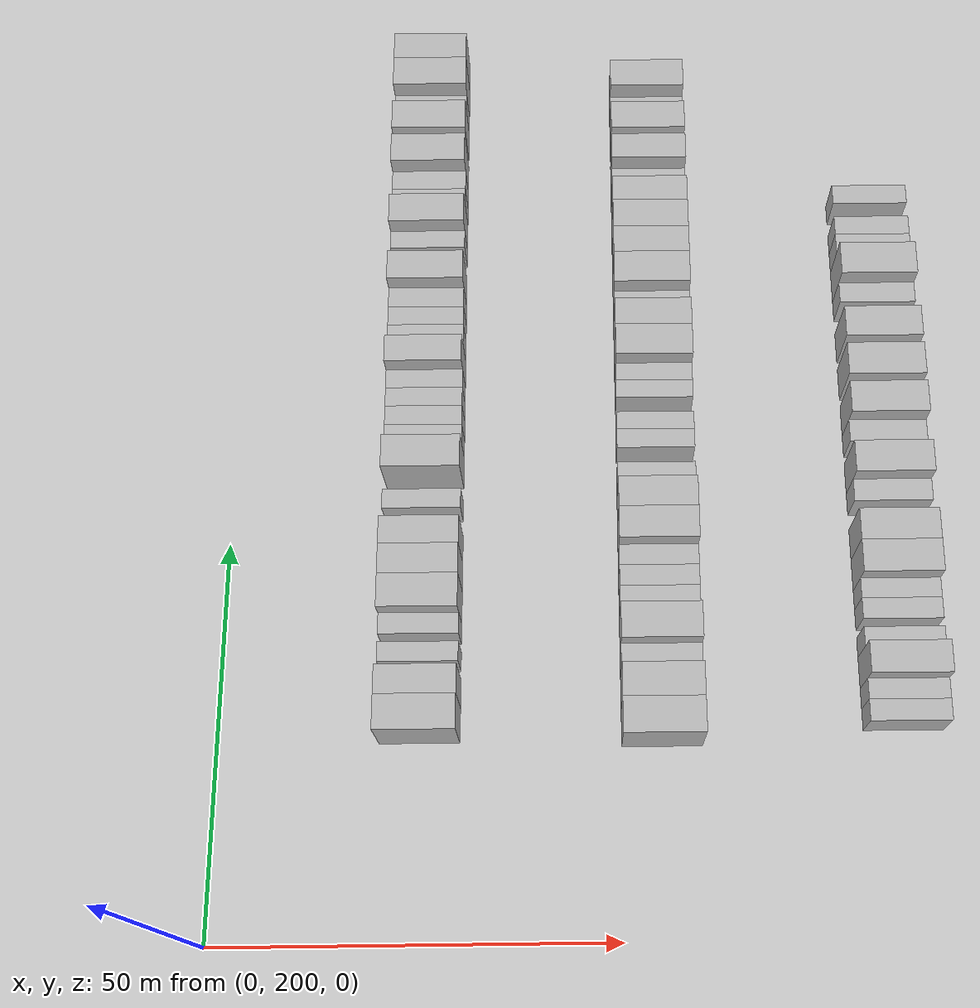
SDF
<sdf version="1.6">
 <world name="default">
  <model name="building_170">
   <static>1</static>
   <pose>25.0000 226.2378 0 0.000000 0.000000 0.000000</pose>
   <link name="link">
    <pose>0 0 4.50 0 0 0</pose>
    <collision name="collision"><geometry><box><size>10.0000 4.3384 9.0000</size></box></geometry></collision>
    <visual name="visual">
     <cast_shadows>0</cast_shadows>
     <geometry><box><size>10.0000 4.3384 9.0000</size></box></geometry>
     <material>
      <script>
       <uri>model://HANNAS_wall/materials/scripts</uri>
       <uri>model://HANNAS_wall/materials/textures</uri>
       <name>vrc/HANNAS_wall</name>
      </script>
     </material>
    </visual>
   </link>
  </model>
  <model name="building_171">
   <static>1</static>
   <pose>25.0000 230.2174 0 0.000000 0.000000 0.000000</pose>
   <link name="link">
    <pose>0 0 4.50 0 0 0</pose>
    <collision name="collision"><geometry><box><size>10.0000 3.6210 9.0000</size></box></geometry></collision>
    <visual name="visual">
     <cast_shadows>0</cast_shadows>
     <geometry><box><size>10.0000 3.6210 9.0000</size></box></geometry>
     <material>
      <script>
       <uri>model://HANNAS_wall/materials/scripts</uri>
       <uri>model://HANNAS_wall/materials/textures</uri>
       <name>vrc/HANNAS_wall</name>
      </script>
     </material>
    </visual>
   </link>
  </model>
  <model name="building_172">
   <static>1</static>
   <pose>25.0000 234.2759 0 0.000000 0.000000 0.000000</pose>
   <link name="link">
    <pose>0 0 3.00 0 0 0</pose>
    <collision name="collision"><geometry><box><size>10.0000 2.4959 6.0000</size></box></geometry></collision>
    <visual name="visual">
     <cast_shadows>0</cast_shadows>
     <geometry><box><size>10.0000 2.4959 6.0000</size></box></geometry>
     <material>
      <script>
       <uri>model://HANNAS_wall/materials/scripts</uri>
       <uri>model://HANNAS_wall/materials/textures</uri>
       <name>vrc/HANNAS_wall</name>
      </script>
     </material>
    </visual>
   </link>
  </model>
  <model name="building_173">
   <static>1</static>
   <pose>25.0000 237.8498 0 0.000000 0.000000 0.000000</pose>
   <link name="link">
    <pose>0 0 3.00 0 0 0</pose>
    <collision name="collision"><geometry><box><size>10.0000 2.6520 6.0000</size></box></geometry></collision>
    <visual name="visual">
     <cast_shadows>0</cast_shadows>
     <geometry><box><size>10.0000 2.6520 6.0000</size></box></geometry>
     <material>
      <script>
       <uri>model://HANNAS_wall/materials/scripts</uri>
       <uri>model://HANNAS_wall/materials/textures</uri>
       <name>vrc/HANNAS_wall</name>
      </script>
     </material>
    </visual>
   </link>
  </model>
  <model name="building_174">
   <static>1</static>
   <pose>25.0000 241.3056 0 0.000000 0.000000 0.000000</pose>
   <link name="link">
    <pose>0 0 4.50 0 0 0</pose>
    <collision name="collision"><geometry><box><size>10.0000 4.2597 9.0000</size></box></geometry></collision>
    <visual name="visual">
     <cast_shadows>0</cast_shadows>
     <geometry><box><size>10.0000 4.2597 9.0000</size></box></geometry>
     <material>
      <script>
       <uri>model://HANNAS_wall/materials/scripts</uri>
       <uri>model://HANNAS_wall/materials/textures</uri>
       <name>vrc/HANNAS_wall</name>
      </script>
     </material>
    </visual>
   </link>
  </model>
  <model name="building_175">
   <static>1</static>
   <pose>25.0000 245.3558 0 0.000000 0.000000 0.000000</pose>
   <link name="link">
    <pose>0 0 4.50 0 0 0</pose>
    <collision name="collision"><geometry><box><size>10.0000 3.8407 9.0000</size></box></geometry></collision>
    <visual name="visual">
     <cast_shadows>0</cast_shadows>
     <geometry><box><size>10.0000 3.8407 9.0000</size></box></geometry>
     <material>
      <script>
       <uri>model://HANNAS_wall/materials/scripts</uri>
       <uri>model://HANNAS_wall/materials/textures</uri>
       <name>vrc/HANNAS_wall</name>
      </script>
     </material>
    </visual>
   </link>
  </model>
  <model name="building_176">
   <static>1</static>
   <pose>25.0000 249.0793 0 0.000000 0.000000 0.000000</pose>
   <link name="link">
    <pose>0 0 4.50 0 0 0</pose>
    <collision name="collision"><geometry><box><size>10.0000 3.6061 9.0000</size></box></geometry></collision>
    <visual name="visual">
     <cast_shadows>0</cast_shadows>
     <geometry><box><size>10.0000 3.6061 9.0000</size></box></geometry>
     <material>
      <script>
       <uri>model://HANNAS_wall/materials/scripts</uri>
       <uri>model://HANNAS_wall/materials/textures</uri>
       <name>vrc/HANNAS_wall</name>
      </script>
     </material>
    </visual>
   </link>
  </model>
  <model name="building_177">
   <static>1</static>
   <pose>25.0000 254.1568 0 0.000000 0.000000 0.000000</pose>
   <link name="link">
    <pose>0 0 3.00 0 0 0</pose>
    <collision name="collision"><geometry><box><size>10.0000 2.5488 6.0000</size></box></geometry></collision>
    <visual name="visual">
     <cast_shadows>0</cast_shadows>
     <geometry><box><size>10.0000 2.5488 6.0000</size></box></geometry>
     <material>
      <script>
       <uri>model://HANNAS_wall/materials/scripts</uri>
       <uri>model://HANNAS_wall/materials/textures</uri>
       <name>vrc/HANNAS_wall</name>
      </script>
     </material>
    </visual>
   </link>
  </model>
  <model name="building_178">
   <static>1</static>
   <pose>25.0000 259.5538 0 0.000000 0.000000 0.000000</pose>
   <link name="link">
    <pose>0 0 4.50 0 0 0</pose>
    <collision name="collision"><geometry><box><size>10.0000 4.2453 9.0000</size></box></geometry></collision>
    <visual name="visual">
     <cast_shadows>0</cast_shadows>
     <geometry><box><size>10.0000 4.2453 9.0000</size></box></geometry>
     <material>
      <script>
       <uri>model://HANNAS_wall/materials/scripts</uri>
       <uri>model://HANNAS_wall/materials/textures</uri>
       <name>vrc/HANNAS_wall</name>
      </script>
     </material>
    </visual>
   </link>
  </model>
  <model name="building_179">
   <static>1</static>
   <pose>25.0000 262.9451 0 0.000000 0.000000 0.000000</pose>
   <link name="link">
    <pose>0 0 3.00 0 0 0</pose>
    <collision name="collision"><geometry><box><size>10.0000 2.5372 6.0000</size></box></geometry></collision>
    <visual name="visual">
     <cast_shadows>0</cast_shadows>
     <geometry><box><size>10.0000 2.5372 6.0000</size></box></geometry>
     <material>
      <script>
       <uri>model://HANNAS_wall/materials/scripts</uri>
       <uri>model://HANNAS_wall/materials/textures</uri>
       <name>vrc/HANNAS_wall</name>
      </script>
     </material>
    </visual>
   </link>
  </model>
  <model name="building_180">
   <static>1</static>
   <pose>25.0000 265.5349 0 0.000000 0.000000 0.000000</pose>
   <link name="link">
    <pose>0 0 3.00 0 0 0</pose>
    <collision name="collision"><geometry><box><size>10.0000 2.6426 6.0000</size></box></geometry></collision>
    <visual name="visual">
     <cast_shadows>0</cast_shadows>
     <geometry><box><size>10.0000 2.6426 6.0000</size></box></geometry>
     <material>
      <script>
       <uri>model://HANNAS_wall/materials/scripts</uri>
       <uri>model://HANNAS_wall/materials/textures</uri>
       <name>vrc/HANNAS_wall</name>
      </script>
     </material>
    </visual>
   </link>
  </model>
  <model name="building_181">
   <static>1</static>
   <pose>25.0000 268.1345 0 0.000000 0.000000 0.000000</pose>
   <link name="link">
    <pose>0 0 3.00 0 0 0</pose>
    <collision name="collision"><geometry><box><size>10.0000 2.5565 6.0000</size></box></geometry></collision>
    <visual name="visual">
     <cast_shadows>0</cast_shadows>
     <geometry><box><size>10.0000 2.5565 6.0000</size></box></geometry>
     <material>
      <script>
       <uri>model://HANNAS_wall/materials/scripts</uri>
       <uri>model://HANNAS_wall/materials/textures</uri>
       <name>vrc/HANNAS_wall</name>
      </script>
     </material>
    </visual>
   </link>
  </model>
  <model name="building_182">
   <static>1</static>
   <pose>25.0000 270.6859 0 0.000000 0.000000 0.000000</pose>
   <link name="link">
    <pose>0 0 3.00 0 0 0</pose>
    <collision name="collision"><geometry><box><size>10.0000 2.5463 6.0000</size></box></geometry></collision>
    <visual name="visual">
     <cast_shadows>0</cast_shadows>
     <geometry><box><size>10.0000 2.5463 6.0000</size></box></geometry>
     <material>
      <script>
       <uri>model://HANNAS_wall/materials/scripts</uri>
       <uri>model://HANNAS_wall/materials/textures</uri>
       <name>vrc/HANNAS_wall</name>
      </script>
     </material>
    </visual>
   </link>
  </model>
  <model name="building_183">
   <static>1</static>
   <pose>25.0000 273.7781 0 0.000000 0.000000 0.000000</pose>
   <link name="link">
    <pose>0 0 4.50 0 0 0</pose>
    <collision name="collision"><geometry><box><size>10.0000 3.6382 9.0000</size></box></geometry></collision>
    <visual name="visual">
     <cast_shadows>0</cast_shadows>
     <geometry><box><size>10.0000 3.6382 9.0000</size></box></geometry>
     <material>
      <script>
       <uri>model://HANNAS_wall/materials/scripts</uri>
       <uri>model://HANNAS_wall/materials/textures</uri>
       <name>vrc/HANNAS_wall</name>
      </script>
     </material>
    </visual>
   </link>
  </model>
  <model name="building_184">
   <static>1</static>
   <pose>25.0000 277.0227 0 0.000000 0.000000 0.000000</pose>
   <link name="link">
    <pose>0 0 3.00 0 0 0</pose>
    <collision name="collision"><geometry><box><size>10.0000 2.8510 6.0000</size></box></geometry></collision>
    <visual name="visual">
     <cast_shadows>0</cast_shadows>
     <geometry><box><size>10.0000 2.8510 6.0000</size></box></geometry>
     <material>
      <script>
       <uri>model://HANNAS_wall/materials/scripts</uri>
       <uri>model://HANNAS_wall/materials/textures</uri>
       <name>vrc/HANNAS_wall</name>
      </script>
     </material>
    </visual>
   </link>
  </model>
  <model name="building_185">
   <static>1</static>
   <pose>25.0000 279.7375 0 0.000000 0.000000 0.000000</pose>
   <link name="link">
    <pose>0 0 3.00 0 0 0</pose>
    <collision name="collision"><geometry><box><size>10.0000 2.5786 6.0000</size></box></geometry></collision>
    <visual name="visual">
     <cast_shadows>0</cast_shadows>
     <geometry><box><size>10.0000 2.5786 6.0000</size></box></geometry>
     <material>
      <script>
       <uri>model://HANNAS_wall/materials/scripts</uri>
       <uri>model://HANNAS_wall/materials/textures</uri>
       <name>vrc/HANNAS_wall</name>
      </script>
     </material>
    </visual>
   </link>
  </model>
  <model name="building_186">
   <static>1</static>
   <pose>25.0000 282.4233 0 0.000000 0.000000 0.000000</pose>
   <link name="link">
    <pose>0 0 3.00 0 0 0</pose>
    <collision name="collision"><geometry><box><size>10.0000 2.7930 6.0000</size></box></geometry></collision>
    <visual name="visual">
     <cast_shadows>0</cast_shadows>
     <geometry><box><size>10.0000 2.7930 6.0000</size></box></geometry>
     <material>
      <script>
       <uri>model://HANNAS_wall/materials/scripts</uri>
       <uri>model://HANNAS_wall/materials/textures</uri>
       <name>vrc/HANNAS_wall</name>
      </script>
     </material>
    </visual>
   </link>
  </model>
  <model name="building_187">
   <static>1</static>
   <pose>25.0000 285.8299 0 0.000000 0.000000 0.000000</pose>
   <link name="link">
    <pose>0 0 4.50 0 0 0</pose>
    <collision name="collision"><geometry><box><size>10.0000 4.0203 9.0000</size></box></geometry></collision>
    <visual name="visual">
     <cast_shadows>0</cast_shadows>
     <geometry><box><size>10.0000 4.0203 9.0000</size></box></geometry>
     <material>
      <script>
       <uri>model://HANNAS_wall/materials/scripts</uri>
       <uri>model://HANNAS_wall/materials/textures</uri>
       <name>vrc/HANNAS_wall</name>
      </script>
     </material>
    </visual>
   </link>
  </model>
  <model name="building_188">
   <static>1</static>
   <pose>25.0000 291.0971 0 0.000000 0.000000 0.000000</pose>
   <link name="link">
    <pose>0 0 3.00 0 0 0</pose>
    <collision name="collision"><geometry><box><size>10.0000 2.5140 6.0000</size></box></geometry></collision>
    <visual name="visual">
     <cast_shadows>0</cast_shadows>
     <geometry><box><size>10.0000 2.5140 6.0000</size></box></geometry>
     <material>
      <script>
       <uri>model://HANNAS_wall/materials/scripts</uri>
       <uri>model://HANNAS_wall/materials/textures</uri>
       <name>vrc/HANNAS_wall</name>
      </script>
     </material>
    </visual>
   </link>
  </model>
  <model name="building_189">
   <static>1</static>
   <pose>25.0000 294.3778 0 0.000000 0.000000 0.000000</pose>
   <link name="link">
    <pose>0 0 4.50 0 0 0</pose>
    <collision name="collision"><geometry><box><size>10.0000 4.0475 9.0000</size></box></geometry></collision>
    <visual name="visual">
     <cast_shadows>0</cast_shadows>
     <geometry><box><size>10.0000 4.0475 9.0000</size></box></geometry>
     <material>
      <script>
       <uri>model://HANNAS_wall/materials/scripts</uri>
       <uri>model://HANNAS_wall/materials/textures</uri>
       <name>vrc/HANNAS_wall</name>
      </script>
     </material>
    </visual>
   </link>
  </model>
  <model name="building_190">
   <static>1</static>
   <pose>25.0000 297.6092 0 0.000000 0.000000 0.000000</pose>
   <link name="link">
    <pose>0 0 3.00 0 0 0</pose>
    <collision name="collision"><geometry><box><size>10.0000 2.4152 6.0000</size></box></geometry></collision>
    <visual name="visual">
     <cast_shadows>0</cast_shadows>
     <geometry><box><size>10.0000 2.4152 6.0000</size></box></geometry>
     <material>
      <script>
       <uri>model://HANNAS_wall/materials/scripts</uri>
       <uri>model://HANNAS_wall/materials/textures</uri>
       <name>vrc/HANNAS_wall</name>
      </script>
     </material>
    </visual>
   </link>
  </model>
  <model name="building_191">
   <static>1</static>
   <pose>25.0000 300.2020 0 0.000000 0.000000 0.000000</pose>
   <link name="link">
    <pose>0 0 3.00 0 0 0</pose>
    <collision name="collision"><geometry><box><size>10.0000 2.7702 6.0000</size></box></geometry></collision>
    <visual name="visual">
     <cast_shadows>0</cast_shadows>
     <geometry><box><size>10.0000 2.7702 6.0000</size></box></geometry>
     <material>
      <script>
       <uri>model://HANNAS_wall/materials/scripts</uri>
       <uri>model://HANNAS_wall/materials/textures</uri>
       <name>vrc/HANNAS_wall</name>
      </script>
     </material>
    </visual>
   </link>
  </model>
  <model name="building_192">
   <static>1</static>
   <pose>25.0000 303.6496 0 0.000000 0.000000 0.000000</pose>
   <link name="link">
    <pose>0 0 4.50 0 0 0</pose>
    <collision name="collision"><geometry><box><size>10.0000 4.1251 9.0000</size></box></geometry></collision>
    <visual name="visual">
     <cast_shadows>0</cast_shadows>
     <geometry><box><size>10.0000 4.1251 9.0000</size></box></geometry>
     <material>
      <script>
       <uri>model://HANNAS_wall/materials/scripts</uri>
       <uri>model://HANNAS_wall/materials/textures</uri>
       <name>vrc/HANNAS_wall</name>
      </script>
     </material>
    </visual>
   </link>
  </model>
  <model name="building_193">
   <static>1</static>
   <pose>25.0000 308.8388 0 0.000000 0.000000 0.000000</pose>
   <link name="link">
    <pose>0 0 4.50 0 0 0</pose>
    <collision name="collision"><geometry><box><size>10.0000 4.2533 9.0000</size></box></geometry></collision>
    <visual name="visual">
     <cast_shadows>0</cast_shadows>
     <geometry><box><size>10.0000 4.2533 9.0000</size></box></geometry>
     <material>
      <script>
       <uri>model://HANNAS_wall/materials/scripts</uri>
       <uri>model://HANNAS_wall/materials/textures</uri>
       <name>vrc/HANNAS_wall</name>
      </script>
     </material>
    </visual>
   </link>
  </model>
  <model name="building_194">
   <static>1</static>
   <pose>25.0000 312.3116 0 0.000000 0.000000 0.000000</pose>
   <link name="link">
    <pose>0 0 3.00 0 0 0</pose>
    <collision name="collision"><geometry><box><size>10.0000 2.6922 6.0000</size></box></geometry></collision>
    <visual name="visual">
     <cast_shadows>0</cast_shadows>
     <geometry><box><size>10.0000 2.6922 6.0000</size></box></geometry>
     <material>
      <script>
       <uri>model://HANNAS_wall/materials/scripts</uri>
       <uri>model://HANNAS_wall/materials/textures</uri>
       <name>vrc/HANNAS_wall</name>
      </script>
     </material>
    </visual>
   </link>
  </model>
  <model name="building_195">
   <static>1</static>
   <pose>25.0000 315.7909 0 0.000000 0.000000 0.000000</pose>
   <link name="link">
    <pose>0 0 4.50 0 0 0</pose>
    <collision name="collision"><geometry><box><size>10.0000 4.2664 9.0000</size></box></geometry></collision>
    <visual name="visual">
     <cast_shadows>0</cast_shadows>
     <geometry><box><size>10.0000 4.2664 9.0000</size></box></geometry>
     <material>
      <script>
       <uri>model://HANNAS_wall/materials/scripts</uri>
       <uri>model://HANNAS_wall/materials/textures</uri>
       <name>vrc/HANNAS_wall</name>
      </script>
     </material>
    </visual>
   </link>
  </model>
  <model name="building_196">
   <static>1</static>
   <pose>25.0000 319.8835 0 0.000000 0.000000 0.000000</pose>
   <link name="link">
    <pose>0 0 4.50 0 0 0</pose>
    <collision name="collision"><geometry><box><size>10.0000 3.9189 9.0000</size></box></geometry></collision>
    <visual name="visual">
     <cast_shadows>0</cast_shadows>
     <geometry><box><size>10.0000 3.9189 9.0000</size></box></geometry>
     <material>
      <script>
       <uri>model://HANNAS_wall/materials/scripts</uri>
       <uri>model://HANNAS_wall/materials/textures</uri>
       <name>vrc/HANNAS_wall</name>
      </script>
     </material>
    </visual>
   </link>
  </model>
  <model name="building_397">
   <static>1</static>
   <pose>55.0000 225.6170 0 0.000000 0.000000 0.000000</pose>
   <link name="link">
    <pose>0 0 4.50 0 0 0</pose>
    <collision name="collision"><geometry><box><size>10.0000 4.4156 9.0000</size></box></geometry></collision>
    <visual name="visual">
     <cast_shadows>0</cast_shadows>
     <geometry><box><size>10.0000 4.4156 9.0000</size></box></geometry>
     <material>
      <script>
       <uri>model://HANNAS_wall/materials/scripts</uri>
       <uri>model://HANNAS_wall/materials/textures</uri>
       <name>vrc/HANNAS_wall</name>
      </script>
     </material>
    </visual>
   </link>
  </model>
  <model name="building_398">
   <static>1</static>
   <pose>55.0000 229.9185 0 0.000000 0.000000 0.000000</pose>
   <link name="link">
    <pose>0 0 4.50 0 0 0</pose>
    <collision name="collision"><geometry><box><size>10.0000 4.1874 9.0000</size></box></geometry></collision>
    <visual name="visual">
     <cast_shadows>0</cast_shadows>
     <geometry><box><size>10.0000 4.1874 9.0000</size></box></geometry>
     <material>
      <script>
       <uri>model://HANNAS_wall/materials/scripts</uri>
       <uri>model://HANNAS_wall/materials/textures</uri>
       <name>vrc/HANNAS_wall</name>
      </script>
     </material>
    </visual>
   </link>
  </model>
  <model name="building_399">
   <static>1</static>
   <pose>55.0000 233.5112 0 0.000000 0.000000 0.000000</pose>
   <link name="link">
    <pose>0 0 3.00 0 0 0</pose>
    <collision name="collision"><geometry><box><size>10.0000 2.9979 6.0000</size></box></geometry></collision>
    <visual name="visual">
     <cast_shadows>0</cast_shadows>
     <geometry><box><size>10.0000 2.9979 6.0000</size></box></geometry>
     <material>
      <script>
       <uri>model://HANNAS_wall/materials/scripts</uri>
       <uri>model://HANNAS_wall/materials/textures</uri>
       <name>vrc/HANNAS_wall</name>
      </script>
     </material>
    </visual>
   </link>
  </model>
  <model name="building_400">
   <static>1</static>
   <pose>55.0000 237.2590 0 0.000000 0.000000 0.000000</pose>
   <link name="link">
    <pose>0 0 4.50 0 0 0</pose>
    <collision name="collision"><geometry><box><size>10.0000 4.4976 9.0000</size></box></geometry></collision>
    <visual name="visual">
     <cast_shadows>0</cast_shadows>
     <geometry><box><size>10.0000 4.4976 9.0000</size></box></geometry>
     <material>
      <script>
       <uri>model://HANNAS_wall/materials/scripts</uri>
       <uri>model://HANNAS_wall/materials/textures</uri>
       <name>vrc/HANNAS_wall</name>
      </script>
     </material>
    </visual>
   </link>
  </model>
  <model name="building_401">
   <static>1</static>
   <pose>55.0000 240.9577 0 0.000000 0.000000 0.000000</pose>
   <link name="link">
    <pose>0 0 3.00 0 0 0</pose>
    <collision name="collision"><geometry><box><size>10.0000 2.8997 6.0000</size></box></geometry></collision>
    <visual name="visual">
     <cast_shadows>0</cast_shadows>
     <geometry><box><size>10.0000 2.8997 6.0000</size></box></geometry>
     <material>
      <script>
       <uri>model://HANNAS_wall/materials/scripts</uri>
       <uri>model://HANNAS_wall/materials/textures</uri>
       <name>vrc/HANNAS_wall</name>
      </script>
     </material>
    </visual>
   </link>
  </model>
  <model name="building_402">
   <static>1</static>
   <pose>55.0000 243.7451 0 0.000000 0.000000 0.000000</pose>
   <link name="link">
    <pose>0 0 3.00 0 0 0</pose>
    <collision name="collision"><geometry><box><size>10.0000 2.6751 6.0000</size></box></geometry></collision>
    <visual name="visual">
     <cast_shadows>0</cast_shadows>
     <geometry><box><size>10.0000 2.6751 6.0000</size></box></geometry>
     <material>
      <script>
       <uri>model://HANNAS_wall/materials/scripts</uri>
       <uri>model://HANNAS_wall/materials/textures</uri>
       <name>vrc/HANNAS_wall</name>
      </script>
     </material>
    </visual>
   </link>
  </model>
  <model name="building_403">
   <static>1</static>
   <pose>55.0000 246.4204 0 0.000000 0.000000 0.000000</pose>
   <link name="link">
    <pose>0 0 3.00 0 0 0</pose>
    <collision name="collision"><geometry><box><size>10.0000 2.6755 6.0000</size></box></geometry></collision>
    <visual name="visual">
     <cast_shadows>0</cast_shadows>
     <geometry><box><size>10.0000 2.6755 6.0000</size></box></geometry>
     <material>
      <script>
       <uri>model://HANNAS_wall/materials/scripts</uri>
       <uri>model://HANNAS_wall/materials/textures</uri>
       <name>vrc/HANNAS_wall</name>
      </script>
     </material>
    </visual>
   </link>
  </model>
  <model name="building_404">
   <static>1</static>
   <pose>55.0000 249.8158 0 0.000000 0.000000 0.000000</pose>
   <link name="link">
    <pose>0 0 4.50 0 0 0</pose>
    <collision name="collision"><geometry><box><size>10.0000 4.1153 9.0000</size></box></geometry></collision>
    <visual name="visual">
     <cast_shadows>0</cast_shadows>
     <geometry><box><size>10.0000 4.1153 9.0000</size></box></geometry>
     <material>
      <script>
       <uri>model://HANNAS_wall/materials/scripts</uri>
       <uri>model://HANNAS_wall/materials/textures</uri>
       <name>vrc/HANNAS_wall</name>
      </script>
     </material>
    </visual>
   </link>
  </model>
  <model name="building_405">
   <static>1</static>
   <pose>55.0000 253.8487 0 0.000000 0.000000 0.000000</pose>
   <link name="link">
    <pose>0 0 4.50 0 0 0</pose>
    <collision name="collision"><geometry><box><size>10.0000 3.9505 9.0000</size></box></geometry></collision>
    <visual name="visual">
     <cast_shadows>0</cast_shadows>
     <geometry><box><size>10.0000 3.9505 9.0000</size></box></geometry>
     <material>
      <script>
       <uri>model://HANNAS_wall/materials/scripts</uri>
       <uri>model://HANNAS_wall/materials/textures</uri>
       <name>vrc/HANNAS_wall</name>
      </script>
     </material>
    </visual>
   </link>
  </model>
  <model name="building_406">
   <static>1</static>
   <pose>55.0000 257.3008 0 0.000000 0.000000 0.000000</pose>
   <link name="link">
    <pose>0 0 3.00 0 0 0</pose>
    <collision name="collision"><geometry><box><size>10.0000 2.9537 6.0000</size></box></geometry></collision>
    <visual name="visual">
     <cast_shadows>0</cast_shadows>
     <geometry><box><size>10.0000 2.9537 6.0000</size></box></geometry>
     <material>
      <script>
       <uri>model://HANNAS_wall/materials/scripts</uri>
       <uri>model://HANNAS_wall/materials/textures</uri>
       <name>vrc/HANNAS_wall</name>
      </script>
     </material>
    </visual>
   </link>
  </model>
  <model name="building_407">
   <static>1</static>
   <pose>55.0000 262.0559 0 0.000000 0.000000 0.000000</pose>
   <link name="link">
    <pose>0 0 3.00 0 0 0</pose>
    <collision name="collision"><geometry><box><size>10.0000 2.5566 6.0000</size></box></geometry></collision>
    <visual name="visual">
     <cast_shadows>0</cast_shadows>
     <geometry><box><size>10.0000 2.5566 6.0000</size></box></geometry>
     <material>
      <script>
       <uri>model://HANNAS_wall/materials/scripts</uri>
       <uri>model://HANNAS_wall/materials/textures</uri>
       <name>vrc/HANNAS_wall</name>
      </script>
     </material>
    </visual>
   </link>
  </model>
  <model name="building_408">
   <static>1</static>
   <pose>55.0000 264.5385 0 0.000000 0.000000 0.000000</pose>
   <link name="link">
    <pose>0 0 3.00 0 0 0</pose>
    <collision name="collision"><geometry><box><size>10.0000 2.4086 6.0000</size></box></geometry></collision>
    <visual name="visual">
     <cast_shadows>0</cast_shadows>
     <geometry><box><size>10.0000 2.4086 6.0000</size></box></geometry>
     <material>
      <script>
       <uri>model://HANNAS_wall/materials/scripts</uri>
       <uri>model://HANNAS_wall/materials/textures</uri>
       <name>vrc/HANNAS_wall</name>
      </script>
     </material>
    </visual>
   </link>
  </model>
  <model name="building_409">
   <static>1</static>
   <pose>55.0000 268.9638 0 0.000000 0.000000 0.000000</pose>
   <link name="link">
    <pose>0 0 3.00 0 0 0</pose>
    <collision name="collision"><geometry><box><size>10.0000 2.4419 6.0000</size></box></geometry></collision>
    <visual name="visual">
     <cast_shadows>0</cast_shadows>
     <geometry><box><size>10.0000 2.4419 6.0000</size></box></geometry>
     <material>
      <script>
       <uri>model://HANNAS_wall/materials/scripts</uri>
       <uri>model://HANNAS_wall/materials/textures</uri>
       <name>vrc/HANNAS_wall</name>
      </script>
     </material>
    </visual>
   </link>
  </model>
  <model name="building_410">
   <static>1</static>
   <pose>55.0000 271.3994 0 0.000000 0.000000 0.000000</pose>
   <link name="link">
    <pose>0 0 3.00 0 0 0</pose>
    <collision name="collision"><geometry><box><size>10.0000 2.4293 6.0000</size></box></geometry></collision>
    <visual name="visual">
     <cast_shadows>0</cast_shadows>
     <geometry><box><size>10.0000 2.4293 6.0000</size></box></geometry>
     <material>
      <script>
       <uri>model://HANNAS_wall/materials/scripts</uri>
       <uri>model://HANNAS_wall/materials/textures</uri>
       <name>vrc/HANNAS_wall</name>
      </script>
     </material>
    </visual>
   </link>
  </model>
  <model name="building_411">
   <static>1</static>
   <pose>55.0000 274.7416 0 0.000000 0.000000 0.000000</pose>
   <link name="link">
    <pose>0 0 4.50 0 0 0</pose>
    <collision name="collision"><geometry><box><size>10.0000 4.2551 9.0000</size></box></geometry></collision>
    <visual name="visual">
     <cast_shadows>0</cast_shadows>
     <geometry><box><size>10.0000 4.2551 9.0000</size></box></geometry>
     <material>
      <script>
       <uri>model://HANNAS_wall/materials/scripts</uri>
       <uri>model://HANNAS_wall/materials/textures</uri>
       <name>vrc/HANNAS_wall</name>
      </script>
     </material>
    </visual>
   </link>
  </model>
  <model name="building_412">
   <static>1</static>
   <pose>55.0000 278.7324 0 0.000000 0.000000 0.000000</pose>
   <link name="link">
    <pose>0 0 4.50 0 0 0</pose>
    <collision name="collision"><geometry><box><size>10.0000 3.7265 9.0000</size></box></geometry></collision>
    <visual name="visual">
     <cast_shadows>0</cast_shadows>
     <geometry><box><size>10.0000 3.7265 9.0000</size></box></geometry>
     <material>
      <script>
       <uri>model://HANNAS_wall/materials/scripts</uri>
       <uri>model://HANNAS_wall/materials/textures</uri>
       <name>vrc/HANNAS_wall</name>
      </script>
     </material>
    </visual>
   </link>
  </model>
  <model name="building_413">
   <static>1</static>
   <pose>55.0000 281.8389 0 0.000000 0.000000 0.000000</pose>
   <link name="link">
    <pose>0 0 3.00 0 0 0</pose>
    <collision name="collision"><geometry><box><size>10.0000 2.4866 6.0000</size></box></geometry></collision>
    <visual name="visual">
     <cast_shadows>0</cast_shadows>
     <geometry><box><size>10.0000 2.4866 6.0000</size></box></geometry>
     <material>
      <script>
       <uri>model://HANNAS_wall/materials/scripts</uri>
       <uri>model://HANNAS_wall/materials/textures</uri>
       <name>vrc/HANNAS_wall</name>
      </script>
     </material>
    </visual>
   </link>
  </model>
  <model name="building_414">
   <static>1</static>
   <pose>55.0000 285.2779 0 0.000000 0.000000 0.000000</pose>
   <link name="link">
    <pose>0 0 4.50 0 0 0</pose>
    <collision name="collision"><geometry><box><size>10.0000 4.3913 9.0000</size></box></geometry></collision>
    <visual name="visual">
     <cast_shadows>0</cast_shadows>
     <geometry><box><size>10.0000 4.3913 9.0000</size></box></geometry>
     <material>
      <script>
       <uri>model://HANNAS_wall/materials/scripts</uri>
       <uri>model://HANNAS_wall/materials/textures</uri>
       <name>vrc/HANNAS_wall</name>
      </script>
     </material>
    </visual>
   </link>
  </model>
  <model name="building_415">
   <static>1</static>
   <pose>55.0000 289.3473 0 0.000000 0.000000 0.000000</pose>
   <link name="link">
    <pose>0 0 4.50 0 0 0</pose>
    <collision name="collision"><geometry><box><size>10.0000 3.7475 9.0000</size></box></geometry></collision>
    <visual name="visual">
     <cast_shadows>0</cast_shadows>
     <geometry><box><size>10.0000 3.7475 9.0000</size></box></geometry>
     <material>
      <script>
       <uri>model://HANNAS_wall/materials/scripts</uri>
       <uri>model://HANNAS_wall/materials/textures</uri>
       <name>vrc/HANNAS_wall</name>
      </script>
     </material>
    </visual>
   </link>
  </model>
  <model name="building_416">
   <static>1</static>
   <pose>55.0000 293.2245 0 0.000000 0.000000 0.000000</pose>
   <link name="link">
    <pose>0 0 4.50 0 0 0</pose>
    <collision name="collision"><geometry><box><size>10.0000 4.0068 9.0000</size></box></geometry></collision>
    <visual name="visual">
     <cast_shadows>0</cast_shadows>
     <geometry><box><size>10.0000 4.0068 9.0000</size></box></geometry>
     <material>
      <script>
       <uri>model://HANNAS_wall/materials/scripts</uri>
       <uri>model://HANNAS_wall/materials/textures</uri>
       <name>vrc/HANNAS_wall</name>
      </script>
     </material>
    </visual>
   </link>
  </model>
  <model name="building_417">
   <static>1</static>
   <pose>55.0000 297.0338 0 0.000000 0.000000 0.000000</pose>
   <link name="link">
    <pose>0 0 4.50 0 0 0</pose>
    <collision name="collision"><geometry><box><size>10.0000 3.6119 9.0000</size></box></geometry></collision>
    <visual name="visual">
     <cast_shadows>0</cast_shadows>
     <geometry><box><size>10.0000 3.6119 9.0000</size></box></geometry>
     <material>
      <script>
       <uri>model://HANNAS_wall/materials/scripts</uri>
       <uri>model://HANNAS_wall/materials/textures</uri>
       <name>vrc/HANNAS_wall</name>
      </script>
     </material>
    </visual>
   </link>
  </model>
  <model name="building_418">
   <static>1</static>
   <pose>55.0000 300.2813 0 0.000000 0.000000 0.000000</pose>
   <link name="link">
    <pose>0 0 3.00 0 0 0</pose>
    <collision name="collision"><geometry><box><size>10.0000 2.8830 6.0000</size></box></geometry></collision>
    <visual name="visual">
     <cast_shadows>0</cast_shadows>
     <geometry><box><size>10.0000 2.8830 6.0000</size></box></geometry>
     <material>
      <script>
       <uri>model://HANNAS_wall/materials/scripts</uri>
       <uri>model://HANNAS_wall/materials/textures</uri>
       <name>vrc/HANNAS_wall</name>
      </script>
     </material>
    </visual>
   </link>
  </model>
  <model name="building_419">
   <static>1</static>
   <pose>55.0000 303.5803 0 0.000000 0.000000 0.000000</pose>
   <link name="link">
    <pose>0 0 4.50 0 0 0</pose>
    <collision name="collision"><geometry><box><size>10.0000 3.7149 9.0000</size></box></geometry></collision>
    <visual name="visual">
     <cast_shadows>0</cast_shadows>
     <geometry><box><size>10.0000 3.7149 9.0000</size></box></geometry>
     <material>
      <script>
       <uri>model://HANNAS_wall/materials/scripts</uri>
       <uri>model://HANNAS_wall/materials/textures</uri>
       <name>vrc/HANNAS_wall</name>
      </script>
     </material>
    </visual>
   </link>
  </model>
  <model name="building_420">
   <static>1</static>
   <pose>55.0000 308.4701 0 0.000000 0.000000 0.000000</pose>
   <link name="link">
    <pose>0 0 4.50 0 0 0</pose>
    <collision name="collision"><geometry><box><size>10.0000 4.0646 9.0000</size></box></geometry></collision>
    <visual name="visual">
     <cast_shadows>0</cast_shadows>
     <geometry><box><size>10.0000 4.0646 9.0000</size></box></geometry>
     <material>
      <script>
       <uri>model://HANNAS_wall/materials/scripts</uri>
       <uri>model://HANNAS_wall/materials/textures</uri>
       <name>vrc/HANNAS_wall</name>
      </script>
     </material>
    </visual>
   </link>
  </model>
  <model name="building_421">
   <static>1</static>
   <pose>55.0000 311.8288 0 0.000000 0.000000 0.000000</pose>
   <link name="link">
    <pose>0 0 3.00 0 0 0</pose>
    <collision name="collision"><geometry><box><size>10.0000 2.6529 6.0000</size></box></geometry></collision>
    <visual name="visual">
     <cast_shadows>0</cast_shadows>
     <geometry><box><size>10.0000 2.6529 6.0000</size></box></geometry>
     <material>
      <script>
       <uri>model://HANNAS_wall/materials/scripts</uri>
       <uri>model://HANNAS_wall/materials/textures</uri>
       <name>vrc/HANNAS_wall</name>
      </script>
     </material>
    </visual>
   </link>
  </model>
  <model name="building_422">
   <static>1</static>
   <pose>55.0000 315.1927 0 0.000000 0.000000 0.000000</pose>
   <link name="link">
    <pose>0 0 4.50 0 0 0</pose>
    <collision name="collision"><geometry><box><size>10.0000 4.0749 9.0000</size></box></geometry></collision>
    <visual name="visual">
     <cast_shadows>0</cast_shadows>
     <geometry><box><size>10.0000 4.0749 9.0000</size></box></geometry>
     <material>
      <script>
       <uri>model://HANNAS_wall/materials/scripts</uri>
       <uri>model://HANNAS_wall/materials/textures</uri>
       <name>vrc/HANNAS_wall</name>
      </script>
     </material>
    </visual>
   </link>
  </model>
  <model name="building_633">
   <static>1</static>
   <pose>85.0000 226.4395 0 0.000000 0.000000 0.000000</pose>
   <link name="link">
    <pose>0 0 3.00 0 0 0</pose>
    <collision name="collision"><geometry><box><size>10.0000 2.6602 6.0000</size></box></geometry></collision>
    <visual name="visual">
     <cast_shadows>0</cast_shadows>
     <geometry><box><size>10.0000 2.6602 6.0000</size></box></geometry>
     <material>
      <script>
       <uri>model://HANNAS_wall/materials/scripts</uri>
       <uri>model://HANNAS_wall/materials/textures</uri>
       <name>vrc/HANNAS_wall</name>
      </script>
     </material>
    </visual>
   </link>
  </model>
  <model name="building_634">
   <static>1</static>
   <pose>85.0000 229.0519 0 0.000000 0.000000 0.000000</pose>
   <link name="link">
    <pose>0 0 3.00 0 0 0</pose>
    <collision name="collision"><geometry><box><size>10.0000 2.5647 6.0000</size></box></geometry></collision>
    <visual name="visual">
     <cast_shadows>0</cast_shadows>
     <geometry><box><size>10.0000 2.5647 6.0000</size></box></geometry>
     <material>
      <script>
       <uri>model://HANNAS_wall/materials/scripts</uri>
       <uri>model://HANNAS_wall/materials/textures</uri>
       <name>vrc/HANNAS_wall</name>
      </script>
     </material>
    </visual>
   </link>
  </model>
  <model name="building_635">
   <static>1</static>
   <pose>85.0000 232.3328 0 0.000000 0.000000 0.000000</pose>
   <link name="link">
    <pose>0 0 4.50 0 0 0</pose>
    <collision name="collision"><geometry><box><size>10.0000 3.9970 9.0000</size></box></geometry></collision>
    <visual name="visual">
     <cast_shadows>0</cast_shadows>
     <geometry><box><size>10.0000 3.9970 9.0000</size></box></geometry>
     <material>
      <script>
       <uri>model://HANNAS_wall/materials/scripts</uri>
       <uri>model://HANNAS_wall/materials/textures</uri>
       <name>vrc/HANNAS_wall</name>
      </script>
     </material>
    </visual>
   </link>
  </model>
  <model name="building_636">
   <static>1</static>
   <pose>85.0000 235.5773 0 0.000000 0.000000 0.000000</pose>
   <link name="link">
    <pose>0 0 3.00 0 0 0</pose>
    <collision name="collision"><geometry><box><size>10.0000 2.4920 6.0000</size></box></geometry></collision>
    <visual name="visual">
     <cast_shadows>0</cast_shadows>
     <geometry><box><size>10.0000 2.4920 6.0000</size></box></geometry>
     <material>
      <script>
       <uri>model://HANNAS_wall/materials/scripts</uri>
       <uri>model://HANNAS_wall/materials/textures</uri>
       <name>vrc/HANNAS_wall</name>
      </script>
     </material>
    </visual>
   </link>
  </model>
  <model name="building_637">
   <static>1</static>
   <pose>85.0000 239.1618 0 0.000000 0.000000 0.000000</pose>
   <link name="link">
    <pose>0 0 3.00 0 0 0</pose>
    <collision name="collision"><geometry><box><size>10.0000 2.6770 6.0000</size></box></geometry></collision>
    <visual name="visual">
     <cast_shadows>0</cast_shadows>
     <geometry><box><size>10.0000 2.6770 6.0000</size></box></geometry>
     <material>
      <script>
       <uri>model://HANNAS_wall/materials/scripts</uri>
       <uri>model://HANNAS_wall/materials/textures</uri>
       <name>vrc/HANNAS_wall</name>
      </script>
     </material>
    </visual>
   </link>
  </model>
  <model name="building_638">
   <static>1</static>
   <pose>85.0000 241.7701 0 0.000000 0.000000 0.000000</pose>
   <link name="link">
    <pose>0 0 3.00 0 0 0</pose>
    <collision name="collision"><geometry><box><size>10.0000 2.5397 6.0000</size></box></geometry></collision>
    <visual name="visual">
     <cast_shadows>0</cast_shadows>
     <geometry><box><size>10.0000 2.5397 6.0000</size></box></geometry>
     <material>
      <script>
       <uri>model://HANNAS_wall/materials/scripts</uri>
       <uri>model://HANNAS_wall/materials/textures</uri>
       <name>vrc/HANNAS_wall</name>
      </script>
     </material>
    </visual>
   </link>
  </model>
  <model name="building_639">
   <static>1</static>
   <pose>85.0000 245.1130 0 0.000000 0.000000 0.000000</pose>
   <link name="link">
    <pose>0 0 4.50 0 0 0</pose>
    <collision name="collision"><geometry><box><size>10.0000 4.1461 9.0000</size></box></geometry></collision>
    <visual name="visual">
     <cast_shadows>0</cast_shadows>
     <geometry><box><size>10.0000 4.1461 9.0000</size></box></geometry>
     <material>
      <script>
       <uri>model://HANNAS_wall/materials/scripts</uri>
       <uri>model://HANNAS_wall/materials/textures</uri>
       <name>vrc/HANNAS_wall</name>
      </script>
     </material>
    </visual>
   </link>
  </model>
  <model name="building_640">
   <static>1</static>
   <pose>85.0000 249.2233 0 0.000000 0.000000 0.000000</pose>
   <link name="link">
    <pose>0 0 4.50 0 0 0</pose>
    <collision name="collision"><geometry><box><size>10.0000 4.0743 9.0000</size></box></geometry></collision>
    <visual name="visual">
     <cast_shadows>0</cast_shadows>
     <geometry><box><size>10.0000 4.0743 9.0000</size></box></geometry>
     <material>
      <script>
       <uri>model://HANNAS_wall/materials/scripts</uri>
       <uri>model://HANNAS_wall/materials/textures</uri>
       <name>vrc/HANNAS_wall</name>
      </script>
     </material>
    </visual>
   </link>
  </model>
  <model name="building_641">
   <static>1</static>
   <pose>85.0000 254.7135 0 0.000000 0.000000 0.000000</pose>
   <link name="link">
    <pose>0 0 3.00 0 0 0</pose>
    <collision name="collision"><geometry><box><size>10.0000 2.9062 6.0000</size></box></geometry></collision>
    <visual name="visual">
     <cast_shadows>0</cast_shadows>
     <geometry><box><size>10.0000 2.9062 6.0000</size></box></geometry>
     <material>
      <script>
       <uri>model://HANNAS_wall/materials/scripts</uri>
       <uri>model://HANNAS_wall/materials/textures</uri>
       <name>vrc/HANNAS_wall</name>
      </script>
     </material>
    </visual>
   </link>
  </model>
  <model name="building_642">
   <static>1</static>
   <pose>85.0000 258.2475 0 0.000000 0.000000 0.000000</pose>
   <link name="link">
    <pose>0 0 4.50 0 0 0</pose>
    <collision name="collision"><geometry><box><size>10.0000 4.1617 9.0000</size></box></geometry></collision>
    <visual name="visual">
     <cast_shadows>0</cast_shadows>
     <geometry><box><size>10.0000 4.1617 9.0000</size></box></geometry>
     <material>
      <script>
       <uri>model://HANNAS_wall/materials/scripts</uri>
       <uri>model://HANNAS_wall/materials/textures</uri>
       <name>vrc/HANNAS_wall</name>
      </script>
     </material>
    </visual>
   </link>
  </model>
  <model name="building_643">
   <static>1</static>
   <pose>85.0000 262.8082 0 0.000000 0.000000 0.000000</pose>
   <link name="link">
    <pose>0 0 3.00 0 0 0</pose>
    <collision name="collision"><geometry><box><size>10.0000 2.9597 6.0000</size></box></geometry></collision>
    <visual name="visual">
     <cast_shadows>0</cast_shadows>
     <geometry><box><size>10.0000 2.9597 6.0000</size></box></geometry>
     <material>
      <script>
       <uri>model://HANNAS_wall/materials/scripts</uri>
       <uri>model://HANNAS_wall/materials/textures</uri>
       <name>vrc/HANNAS_wall</name>
      </script>
     </material>
    </visual>
   </link>
  </model>
  <model name="building_644">
   <static>1</static>
   <pose>85.0000 266.4025 0 0.000000 0.000000 0.000000</pose>
   <link name="link">
    <pose>0 0 4.50 0 0 0</pose>
    <collision name="collision"><geometry><box><size>10.0000 4.2289 9.0000</size></box></geometry></collision>
    <visual name="visual">
     <cast_shadows>0</cast_shadows>
     <geometry><box><size>10.0000 4.2289 9.0000</size></box></geometry>
     <material>
      <script>
       <uri>model://HANNAS_wall/materials/scripts</uri>
       <uri>model://HANNAS_wall/materials/textures</uri>
       <name>vrc/HANNAS_wall</name>
      </script>
     </material>
    </visual>
   </link>
  </model>
  <model name="building_645">
   <static>1</static>
   <pose>85.0000 271.7187 0 0.000000 0.000000 0.000000</pose>
   <link name="link">
    <pose>0 0 4.50 0 0 0</pose>
    <collision name="collision"><geometry><box><size>10.0000 4.4035 9.0000</size></box></geometry></collision>
    <visual name="visual">
     <cast_shadows>0</cast_shadows>
     <geometry><box><size>10.0000 4.4035 9.0000</size></box></geometry>
     <material>
      <script>
       <uri>model://HANNAS_wall/materials/scripts</uri>
       <uri>model://HANNAS_wall/materials/textures</uri>
       <name>vrc/HANNAS_wall</name>
      </script>
     </material>
    </visual>
   </link>
  </model>
  <model name="building_646">
   <static>1</static>
   <pose>85.0000 277.0306 0 0.000000 0.000000 0.000000</pose>
   <link name="link">
    <pose>0 0 4.50 0 0 0</pose>
    <collision name="collision"><geometry><box><size>10.0000 4.2204 9.0000</size></box></geometry></collision>
    <visual name="visual">
     <cast_shadows>0</cast_shadows>
     <geometry><box><size>10.0000 4.2204 9.0000</size></box></geometry>
     <material>
      <script>
       <uri>model://HANNAS_wall/materials/scripts</uri>
       <uri>model://HANNAS_wall/materials/textures</uri>
       <name>vrc/HANNAS_wall</name>
      </script>
     </material>
    </visual>
   </link>
  </model>
  <model name="building_647">
   <static>1</static>
   <pose>85.0000 282.5681 0 0.000000 0.000000 0.000000</pose>
   <link name="link">
    <pose>0 0 3.00 0 0 0</pose>
    <collision name="collision"><geometry><box><size>10.0000 2.8545 6.0000</size></box></geometry></collision>
    <visual name="visual">
     <cast_shadows>0</cast_shadows>
     <geometry><box><size>10.0000 2.8545 6.0000</size></box></geometry>
     <material>
      <script>
       <uri>model://HANNAS_wall/materials/scripts</uri>
       <uri>model://HANNAS_wall/materials/textures</uri>
       <name>vrc/HANNAS_wall</name>
      </script>
     </material>
    </visual>
   </link>
  </model>
  <model name="building_648">
   <static>1</static>
   <pose>85.0000 286.2229 0 0.000000 0.000000 0.000000</pose>
   <link name="link">
    <pose>0 0 4.50 0 0 0</pose>
    <collision name="collision"><geometry><box><size>10.0000 4.4550 9.0000</size></box></geometry></collision>
    <visual name="visual">
     <cast_shadows>0</cast_shadows>
     <geometry><box><size>10.0000 4.4550 9.0000</size></box></geometry>
     <material>
      <script>
       <uri>model://HANNAS_wall/materials/scripts</uri>
       <uri>model://HANNAS_wall/materials/textures</uri>
       <name>vrc/HANNAS_wall</name>
      </script>
     </material>
    </visual>
   </link>
  </model>
  <model name="building_649">
   <static>1</static>
   <pose>85.0000 289.8764 0 0.000000 0.000000 0.000000</pose>
   <link name="link">
    <pose>0 0 3.00 0 0 0</pose>
    <collision name="collision"><geometry><box><size>10.0000 2.8521 6.0000</size></box></geometry></collision>
    <visual name="visual">
     <cast_shadows>0</cast_shadows>
     <geometry><box><size>10.0000 2.8521 6.0000</size></box></geometry>
     <material>
      <script>
       <uri>model://HANNAS_wall/materials/scripts</uri>
       <uri>model://HANNAS_wall/materials/textures</uri>
       <name>vrc/HANNAS_wall</name>
      </script>
     </material>
    </visual>
   </link>
  </model>
  <model name="building_650">
   <static>1</static>
   <pose>85.0000 292.6522 0 0.000000 0.000000 0.000000</pose>
   <link name="link">
    <pose>0 0 3.00 0 0 0</pose>
    <collision name="collision"><geometry><box><size>10.0000 2.6994 6.0000</size></box></geometry></collision>
    <visual name="visual">
     <cast_shadows>0</cast_shadows>
     <geometry><box><size>10.0000 2.6994 6.0000</size></box></geometry>
     <material>
      <script>
       <uri>model://HANNAS_wall/materials/scripts</uri>
       <uri>model://HANNAS_wall/materials/textures</uri>
       <name>vrc/HANNAS_wall</name>
      </script>
     </material>
    </visual>
   </link>
  </model>
  <model name="building_651">
   <static>1</static>
   <pose>85.0000 297.3833 0 0.000000 0.000000 0.000000</pose>
   <link name="link">
    <pose>0 0 3.00 0 0 0</pose>
    <collision name="collision"><geometry><box><size>10.0000 2.7630 6.0000</size></box></geometry></collision>
    <visual name="visual">
     <cast_shadows>0</cast_shadows>
     <geometry><box><size>10.0000 2.7630 6.0000</size></box></geometry>
     <material>
      <script>
       <uri>model://HANNAS_wall/materials/scripts</uri>
       <uri>model://HANNAS_wall/materials/textures</uri>
       <name>vrc/HANNAS_wall</name>
      </script>
     </material>
    </visual>
   </link>
  </model>
 </world>
</sdf>
